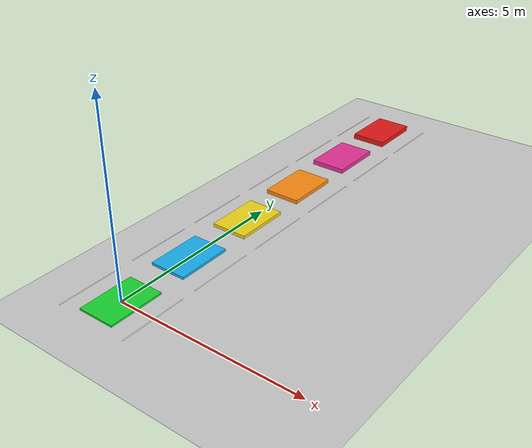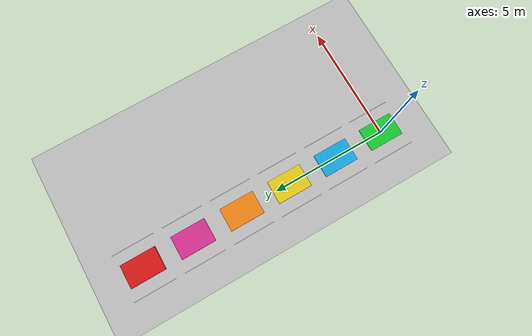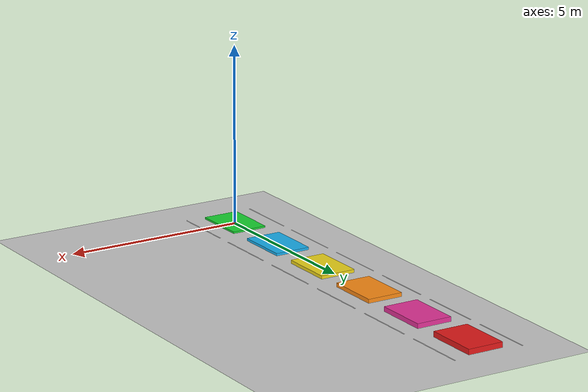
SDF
<sdf version="1.7">
 <world name="rubi_cot_height_sweep_overview">
  <physics name="default_physics" default="1" type="ode">
   <max_step_size>0.002</max_step_size>
   <real_time_factor>1</real_time_factor>
   <real_time_update_rate>500</real_time_update_rate>
   <ode>
    <solver>
     <type>quick</type>
     <iters>100</iters>
     <sor>1</sor>
     <use_dynamic_moi_rescaling>0</use_dynamic_moi_rescaling>
    </solver>
    <constraints>
     <cfm>0</cfm>
     <erp>0.2</erp>
     <contact_max_correcting_vel>100</contact_max_correcting_vel>
     <contact_surface_layer>0.001</contact_surface_layer>
    </constraints>
   </ode>
  </physics>
  <model name="ground_plane">
   <static>1</static>
   <link name="link">
    <collision name="collision">
     <geometry><plane><normal>0 0 1</normal><size>100 100</size></plane></geometry>
     <surface>
      <contact><collide_bitmask>65535</collide_bitmask></contact>
      <friction><ode><mu>100</mu><mu2>50</mu2></ode></friction>
     </surface>
    </collision>
    <visual name="visual">
     <cast_shadows>0</cast_shadows>
     <geometry><plane><normal>0 0 1</normal><size>100 100</size></plane></geometry>
     <material>
      <script><uri>file://media/materials/scripts/gazebo.material</uri><name>Gazebo/Grey</name></script>
     </material>
    </visual>
   </link>
  </model>
  <light name="sun" type="directional">
   <pose>0 0 10 0 -0 0</pose>
   <diffuse>0.8 0.8 0.8 1</diffuse>
   <specular>0.2 0.2 0.2 1</specular>
   <attenuation>
    <range>1000</range>
    <constant>0.9</constant>
    <linear>0.01</linear>
    <quadratic>0.001</quadratic>
   </attenuation>
   <direction>-0.5 0.1 -0.9</direction>
   <spot><inner_angle>0</inner_angle><outer_angle>0</outer_angle><falloff>0</falloff></spot>
  </light>
  <gravity>0 0 -9.8</gravity>
  <magnetic_field>6e-06 2.3e-05 -4.2e-05</magnetic_field>
  <atmosphere type="adiabatic"/>
  <scene><ambient>0.4 0.4 0.4 1</ambient><background>0.7 0.7 0.7 1</background><shadows>1</shadows></scene>
  <audio><device>default</device></audio>
  <spherical_coordinates>
   <surface_model>EARTH_WGS84</surface_model>
   <latitude_deg>0</latitude_deg>
   <longitude_deg>0</longitude_deg>
   <elevation>0</elevation>
   <heading_deg>0</heading_deg>
  </spherical_coordinates>
  <model name="cot_platform_05cm">
   <static>1</static>
   <link name="link">
    <visual name="visual">
     <pose>0 0 0.02500 0 0 0</pose>
     <geometry><box><size>1.000 1.500 0.05000</size></box></geometry>
     <material>
      <ambient>0.100 0.850 0.200 1.000</ambient>
      <diffuse>0.100 0.850 0.200 1.000</diffuse>
      <specular>0.05 0.05 0.05 1</specular>
      <emissive>0 0 0 1</emissive>
     </material>
    </visual>
    <collision name="collision">
     <pose>0 0 0.02500 0 0 0</pose>
     <geometry><box><size>1.000 1.500 0.05000</size></box></geometry>
     <surface>
      <friction><ode><mu>100</mu><mu2>50</mu2><slip1>0</slip1><slip2>0</slip2></ode></friction>
      <contact>
       <ode><soft_cfm>0</soft_cfm><soft_erp>0.2</soft_erp><kp>1e+13</kp><kd>1</kd><min_depth>0</min_depth></ode>
      </contact>
     </surface>
    </collision>
   </link>
  </model>
  <model name="cot_gate_in_05cm">
   <static>1</static>
   <pose>-1.000 0.000 0 0 0 0</pose>
   <link name="link">
    <visual name="visual">
     <pose>0 0 0.002 0 0 0</pose>
     <geometry><box><size>0.025 1.800 0.004</size></box></geometry>
     <material>
      <ambient>0.950 0.950 0.950 0.750</ambient>
      <diffuse>0.950 0.950 0.950 0.750</diffuse>
      <emissive>0 0 0 1</emissive>
     </material>
    </visual>
   </link>
  </model>
  <model name="cot_gate_out_05cm">
   <static>1</static>
   <pose>1.000 0.000 0 0 0 0</pose>
   <link name="link">
    <visual name="visual">
     <pose>0 0 0.002 0 0 0</pose>
     <geometry><box><size>0.025 1.800 0.004</size></box></geometry>
     <material>
      <ambient>0.950 0.950 0.950 0.750</ambient>
      <diffuse>0.950 0.950 0.950 0.750</diffuse>
      <emissive>0 0 0 1</emissive>
     </material>
    </visual>
   </link>
  </model>
  <model name="cot_platform_07cm">
   <static>1</static>
   <pose>0 2.200 0 0 0 0</pose>
   <link name="link">
    <visual name="visual">
     <pose>0 0 0.03500 0 0 0</pose>
     <geometry><box><size>1.000 1.500 0.07000</size></box></geometry>
     <material>
      <ambient>0.100 0.700 0.950 1.000</ambient>
      <diffuse>0.100 0.700 0.950 1.000</diffuse>
      <specular>0.05 0.05 0.05 1</specular>
      <emissive>0 0 0 1</emissive>
     </material>
    </visual>
    <collision name="collision">
     <pose>0 0 0.03500 0 0 0</pose>
     <geometry><box><size>1.000 1.500 0.07000</size></box></geometry>
     <surface>
      <friction><ode><mu>100</mu><mu2>50</mu2><slip1>0</slip1><slip2>0</slip2></ode></friction>
      <contact>
       <ode><soft_cfm>0</soft_cfm><soft_erp>0.2</soft_erp><kp>1e+13</kp><kd>1</kd><min_depth>0</min_depth></ode>
      </contact>
     </surface>
    </collision>
   </link>
  </model>
  <model name="cot_gate_in_07cm">
   <static>1</static>
   <pose>-1.000 2.200 0 0 0 0</pose>
   <link name="link">
    <visual name="visual">
     <pose>0 0 0.002 0 0 0</pose>
     <geometry><box><size>0.025 1.800 0.004</size></box></geometry>
     <material>
      <ambient>0.950 0.950 0.950 0.750</ambient>
      <diffuse>0.950 0.950 0.950 0.750</diffuse>
      <emissive>0 0 0 1</emissive>
     </material>
    </visual>
   </link>
  </model>
  <model name="cot_gate_out_07cm">
   <static>1</static>
   <pose>1.000 2.200 0 0 0 0</pose>
   <link name="link">
    <visual name="visual">
     <pose>0 0 0.002 0 0 0</pose>
     <geometry><box><size>0.025 1.800 0.004</size></box></geometry>
     <material>
      <ambient>0.950 0.950 0.950 0.750</ambient>
      <diffuse>0.950 0.950 0.950 0.750</diffuse>
      <emissive>0 0 0 1</emissive>
     </material>
    </visual>
   </link>
  </model>
  <model name="cot_platform_09cm">
   <static>1</static>
   <pose>0 4.400 0 0 0 0</pose>
   <link name="link">
    <visual name="visual">
     <pose>0 0 0.04500 0 0 0</pose>
     <geometry><box><size>1.000 1.500 0.09000</size></box></geometry>
     <material>
      <ambient>0.950 0.850 0.100 1.000</ambient>
      <diffuse>0.950 0.850 0.100 1.000</diffuse>
      <specular>0.05 0.05 0.05 1</specular>
      <emissive>0 0 0 1</emissive>
     </material>
    </visual>
    <collision name="collision">
     <pose>0 0 0.04500 0 0 0</pose>
     <geometry><box><size>1.000 1.500 0.09000</size></box></geometry>
     <surface>
      <friction><ode><mu>100</mu><mu2>50</mu2><slip1>0</slip1><slip2>0</slip2></ode></friction>
      <contact>
       <ode><soft_cfm>0</soft_cfm><soft_erp>0.2</soft_erp><kp>1e+13</kp><kd>1</kd><min_depth>0</min_depth></ode>
      </contact>
     </surface>
    </collision>
   </link>
  </model>
  <model name="cot_gate_in_09cm">
   <static>1</static>
   <pose>-1.000 4.400 0 0 0 0</pose>
   <link name="link">
    <visual name="visual">
     <pose>0 0 0.002 0 0 0</pose>
     <geometry><box><size>0.025 1.800 0.004</size></box></geometry>
     <material>
      <ambient>0.950 0.950 0.950 0.750</ambient>
      <diffuse>0.950 0.950 0.950 0.750</diffuse>
      <emissive>0 0 0 1</emissive>
     </material>
    </visual>
   </link>
  </model>
  <model name="cot_gate_out_09cm">
   <static>1</static>
   <pose>1.000 4.400 0 0 0 0</pose>
   <link name="link">
    <visual name="visual">
     <pose>0 0 0.002 0 0 0</pose>
     <geometry><box><size>0.025 1.800 0.004</size></box></geometry>
     <material>
      <ambient>0.950 0.950 0.950 0.750</ambient>
      <diffuse>0.950 0.950 0.950 0.750</diffuse>
      <emissive>0 0 0 1</emissive>
     </material>
    </visual>
   </link>
  </model>
  <model name="cot_platform_11cm">
   <static>1</static>
   <pose>0 6.600 0 0 0 0</pose>
   <link name="link">
    <visual name="visual">
     <pose>0 0 0.05500 0 0 0</pose>
     <geometry><box><size>1.000 1.500 0.11000</size></box></geometry>
     <material>
      <ambient>1.000 0.550 0.080 1.000</ambient>
      <diffuse>1.000 0.550 0.080 1.000</diffuse>
      <specular>0.05 0.05 0.05 1</specular>
      <emissive>0 0 0 1</emissive>
     </material>
    </visual>
    <collision name="collision">
     <pose>0 0 0.05500 0 0 0</pose>
     <geometry><box><size>1.000 1.500 0.11000</size></box></geometry>
     <surface>
      <friction><ode><mu>100</mu><mu2>50</mu2><slip1>0</slip1><slip2>0</slip2></ode></friction>
      <contact>
       <ode><soft_cfm>0</soft_cfm><soft_erp>0.2</soft_erp><kp>1e+13</kp><kd>1</kd><min_depth>0</min_depth></ode>
      </contact>
     </surface>
    </collision>
   </link>
  </model>
  <model name="cot_gate_in_11cm">
   <static>1</static>
   <pose>-1.000 6.600 0 0 0 0</pose>
   <link name="link">
    <visual name="visual">
     <pose>0 0 0.002 0 0 0</pose>
     <geometry><box><size>0.025 1.800 0.004</size></box></geometry>
     <material>
      <ambient>0.950 0.950 0.950 0.750</ambient>
      <diffuse>0.950 0.950 0.950 0.750</diffuse>
      <emissive>0 0 0 1</emissive>
     </material>
    </visual>
   </link>
  </model>
  <model name="cot_gate_out_11cm">
   <static>1</static>
   <pose>1.000 6.600 0 0 0 0</pose>
   <link name="link">
    <visual name="visual">
     <pose>0 0 0.002 0 0 0</pose>
     <geometry><box><size>0.025 1.800 0.004</size></box></geometry>
     <material>
      <ambient>0.950 0.950 0.950 0.750</ambient>
      <diffuse>0.950 0.950 0.950 0.750</diffuse>
      <emissive>0 0 0 1</emissive>
     </material>
    </visual>
   </link>
  </model>
  <model name="cot_platform_13cm">
   <static>1</static>
   <pose>0 8.800 0 0 0 0</pose>
   <link name="link">
    <visual name="visual">
     <pose>0 0 0.06500 0 0 0</pose>
     <geometry><box><size>1.000 1.500 0.13000</size></box></geometry>
     <material>
      <ambient>0.900 0.200 0.600 1.000</ambient>
      <diffuse>0.900 0.200 0.600 1.000</diffuse>
      <specular>0.05 0.05 0.05 1</specular>
      <emissive>0 0 0 1</emissive>
     </material>
    </visual>
    <collision name="collision">
     <pose>0 0 0.06500 0 0 0</pose>
     <geometry><box><size>1.000 1.500 0.13000</size></box></geometry>
     <surface>
      <friction><ode><mu>100</mu><mu2>50</mu2><slip1>0</slip1><slip2>0</slip2></ode></friction>
      <contact>
       <ode><soft_cfm>0</soft_cfm><soft_erp>0.2</soft_erp><kp>1e+13</kp><kd>1</kd><min_depth>0</min_depth></ode>
      </contact>
     </surface>
    </collision>
   </link>
  </model>
  <model name="cot_gate_in_13cm">
   <static>1</static>
   <pose>-1.000 8.800 0 0 0 0</pose>
   <link name="link">
    <visual name="visual">
     <pose>0 0 0.002 0 0 0</pose>
     <geometry><box><size>0.025 1.800 0.004</size></box></geometry>
     <material>
      <ambient>0.950 0.950 0.950 0.750</ambient>
      <diffuse>0.950 0.950 0.950 0.750</diffuse>
      <emissive>0 0 0 1</emissive>
     </material>
    </visual>
   </link>
  </model>
  <model name="cot_gate_out_13cm">
   <static>1</static>
   <pose>1.000 8.800 0 0 0 0</pose>
   <link name="link">
    <visual name="visual">
     <pose>0 0 0.002 0 0 0</pose>
     <geometry><box><size>0.025 1.800 0.004</size></box></geometry>
     <material>
      <ambient>0.950 0.950 0.950 0.750</ambient>
      <diffuse>0.950 0.950 0.950 0.750</diffuse>
      <emissive>0 0 0 1</emissive>
     </material>
    </visual>
   </link>
  </model>
  <model name="cot_platform_15cm">
   <static>1</static>
   <pose>0 11.000 0 0 0 0</pose>
   <link name="link">
    <visual name="visual">
     <pose>0 0 0.07500 0 0 0</pose>
     <geometry><box><size>1.000 1.500 0.15000</size></box></geometry>
     <material>
      <ambient>0.900 0.100 0.100 1.000</ambient>
      <diffuse>0.900 0.100 0.100 1.000</diffuse>
      <specular>0.05 0.05 0.05 1</specular>
      <emissive>0 0 0 1</emissive>
     </material>
    </visual>
    <collision name="collision">
     <pose>0 0 0.07500 0 0 0</pose>
     <geometry><box><size>1.000 1.500 0.15000</size></box></geometry>
     <surface>
      <friction><ode><mu>100</mu><mu2>50</mu2><slip1>0</slip1><slip2>0</slip2></ode></friction>
      <contact>
       <ode><soft_cfm>0</soft_cfm><soft_erp>0.2</soft_erp><kp>1e+13</kp><kd>1</kd><min_depth>0</min_depth></ode>
      </contact>
     </surface>
    </collision>
   </link>
  </model>
  <model name="cot_gate_in_15cm">
   <static>1</static>
   <pose>-1.000 11.000 0 0 0 0</pose>
   <link name="link">
    <visual name="visual">
     <pose>0 0 0.002 0 0 0</pose>
     <geometry><box><size>0.025 1.800 0.004</size></box></geometry>
     <material>
      <ambient>0.950 0.950 0.950 0.750</ambient>
      <diffuse>0.950 0.950 0.950 0.750</diffuse>
      <emissive>0 0 0 1</emissive>
     </material>
    </visual>
   </link>
  </model>
  <model name="cot_gate_out_15cm">
   <static>1</static>
   <pose>1.000 11.000 0 0 0 0</pose>
   <link name="link">
    <visual name="visual">
     <pose>0 0 0.002 0 0 0</pose>
     <geometry><box><size>0.025 1.800 0.004</size></box></geometry>
     <material>
      <ambient>0.950 0.950 0.950 0.750</ambient>
      <diffuse>0.950 0.950 0.950 0.750</diffuse>
      <emissive>0 0 0 1</emissive>
     </material>
    </visual>
   </link>
  </model>
 </world>
</sdf>
